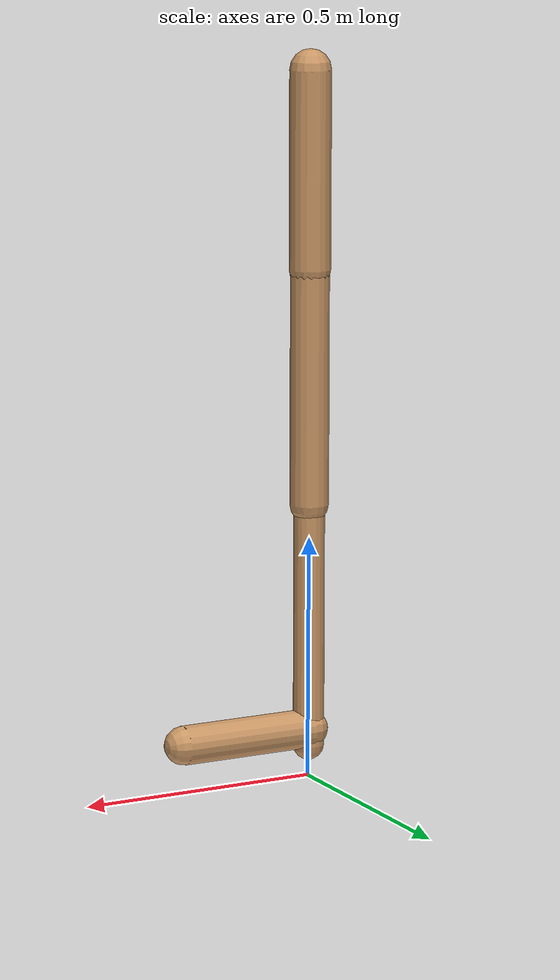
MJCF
<mujoco model="walker2d">
  <compiler angle="degree" coordinate="global" inertiafromgeom="true" />
  <default>
    <joint armature="0.01" damping=".1" limited="true" />
    <geom conaffinity="0" condim="3" contype="1" density="1000" friction="0.8 .1 .1" rgba="0.8 0.6 .4 1" />
  </default>
  <option integrator="RK4" timestep="0.002" />
  <worldbody>

    <body name="torso" pos="0 0 0.06386611219851628">
      <joint armature="0" axis="1 0 0" damping="0" limited="false" name="ignorex" pos="0 0 0" stiffness="0" type="slide" />
      <joint armature="0" axis="0 0 1" damping="0" limited="false" name="ignorez" pos="0 0 0" ref="1.25" stiffness="0" type="slide" />
      <joint armature="0" axis="0 1 0" damping="0" limited="false" name="ignorey" pos="0 0 0" stiffness="0" type="hinge" />
      <geom fromto="0 0 1.45 0 0 1.05" name="torso_geom" size="0.04225573687906595" type="capsule" />
      <body name="thigh">
        <joint axis="0 -1 0" name="thigh_joint" pos="0 0 1.05" range="-150 0" type="hinge" />
        <geom fromto="0.0 0.0 1.05 0.0 0.0 0.5697476310638607" name="thigh_geom" size="0.03978034054724205" type="capsule" />
        <body name="leg" pos="0.0 0.0 -0.03025236893613925">
          <joint axis="0 -1 0" name="leg_joint" pos="0 0 0.6" range="-150 0" type="hinge" />
          <geom fromto="0.0 0.0 0.6 0.0 0.0 0.06638625673762302" name="leg_geom" size="0.031824272437793635" type="capsule" />
          <body name="foot" pos="0.0 0.0 -0.03361374326237698">
            <joint axis="0 -1 0" name="foot_joint" pos="0 0 0.1" range="-45 45" type="hinge" />
            <geom fromto="-0.0 0.0 0.1 0.2852287968548567 0.0 0.1" name="foot_geom" size="0.03982580876157468" type="capsule" />
          </body>
        </body>
      </body>

      <body name="thigh_left">
        <joint axis="0 -1 0" name="thigh_left_joint" pos="0 0 1.05" range="-150 0" type="hinge" />
        <geom fromto="0.0 0.0 1.05 0.0 0.0 0.5697476310638607" name="thigh_left_geom" rgba=".7 .3 .6 1" size="0.03978034054724205" type="capsule" />
        <body name="leg_left" pos="0.0 0.0 -0.03025236893613925">
          <joint axis="0 -1 0" name="leg_left_joint" pos="0 0 0.6" range="-150 0" type="hinge" />
          <geom fromto="0.0 0.0 0.6 0.0 0.0 0.06638625673762302" name="leg_left_geom" rgba=".7 .3 .6 1" size="0.031824272437793635" type="capsule" />
          <body name="foot_left" pos="0.0 0.0 -0.03361374326237698">
            <joint axis="0 -1 0" name="foot_left_joint" pos="0 0 0.1" range="-45 45" type="hinge" />
            <geom fromto="-0.0 0.0 0.1 0.2852287968548567 0.0 0.1" name="foot_left_geom" rgba=".7 .3 .6 1" size="0.03982580876157468" type="capsule" />
          </body>
        </body>
      </body>
    </body>
  </worldbody>
  <actuator>

    <motor ctrllimited="true" ctrlrange="-1.0 1.0" gear="100" joint="thigh_joint" />
    <motor ctrllimited="true" ctrlrange="-1.0 1.0" gear="100" joint="leg_joint" />
    <motor ctrllimited="true" ctrlrange="-1.0 1.0" gear="100" joint="foot_joint" />
    <motor ctrllimited="true" ctrlrange="-1.0 1.0" gear="100" joint="thigh_left_joint" />
    <motor ctrllimited="true" ctrlrange="-1.0 1.0" gear="100" joint="leg_left_joint" />
    <motor ctrllimited="true" ctrlrange="-1.0 1.0" gear="100" joint="foot_left_joint" />

  </actuator>
</mujoco>
